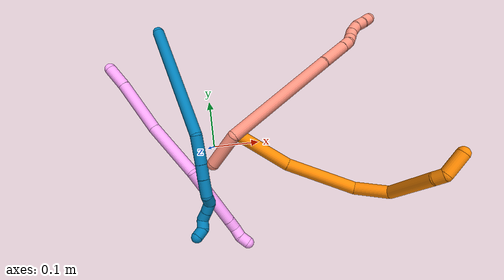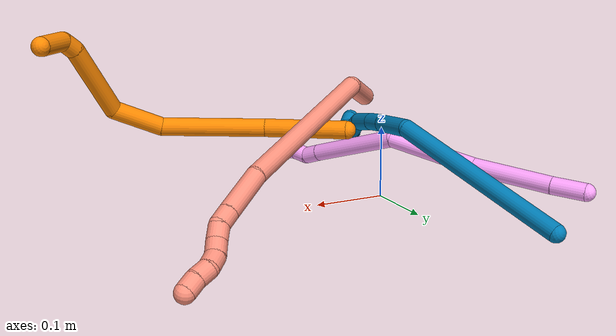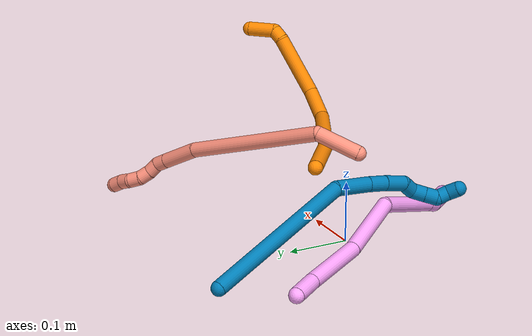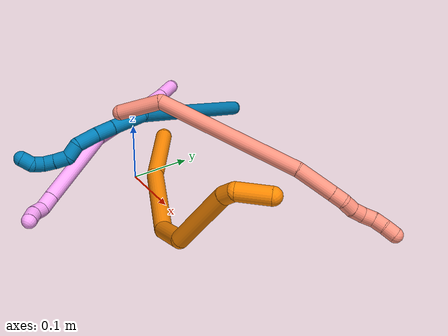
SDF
<sdf version="1.7">
 <world name="default">
  <model name="photoneo_s_sensor">
   <static>1</static>
   <pose>0 0 2 1.57079 1.57079 3.14159</pose>
   <link name="link">
    <inertial><mass>0.1</mass></inertial>
    <sensor name="sensor" type="depth">
     <update_rate>30</update_rate>
     <camera>
      <horizontal_fov>1.22</horizontal_fov>
      <image><width>1920</width><height>1200</height><format>B8G8R8</format></image>
      <clip><near>0.1</near><far>4</far></clip>
      <depth_camera><output>points</output></depth_camera>
     </camera>
     <plugin name="camera_plugin" filename="libgazebo_ros_depth_camera.so">
      <baseline>0.2</baseline>
      <alwaysOn>1</alwaysOn>
      <updateRate>0.0</updateRate>
      <cameraName>camera_ir</cameraName>
      <imageTopicName>/camera/color/image_raw</imageTopicName>
      <cameraInfoTopicName>/camera/color/camera_info</cameraInfoTopicName>
      <depthImageTopicName>/camera/depth/image_raw</depthImageTopicName>
      <depthImageCameraInfoTopicName>/camera/depth/camera_info</depthImageCameraInfoTopicName>
      <pointCloudTopicName>/camera/depth/points</pointCloudTopicName>
      <frameName>fr_optical</frameName>
      <pointCloudCutoff>0.1</pointCloudCutoff>
      <pointCloudCutoffMax>2.0</pointCloudCutoffMax>
      <distortionK1>0</distortionK1>
      <distortionK2>0</distortionK2>
      <distortionK3>0</distortionK3>
      <distortionT1>0</distortionT1>
      <distortionT2>0</distortionT2>
      <CxPrime>0</CxPrime>
      <Cx>0</Cx>
      <Cy>0</Cy>
      <focalLength>0</focalLength>
      <hackBaseline>0</hackBaseline>
     </plugin>
    </sensor>
   </link>
  </model>
  <model name="bin">
   <static>1</static>
   <link name="bottom">
    <collision name="collision-bottom">
     <pose>0 0 -0.01 0 -0 0</pose>
     <geometry><box><size>0.8 0.6 0.02</size></box></geometry>
     <surface>
      <friction><ode><mu>100</mu><mu2>100</mu2></ode></friction>
      <contact><collide_bitmask>65535</collide_bitmask></contact>
     </surface>
    </collision>
   </link>
   <link name="west_wall">
    <collision name="collision-west_wall">
     <pose>-0.41 0 0.1 0 -0 0</pose>
     <geometry><box><size>0.02 0.6 0.2</size></box></geometry>
     <surface>
      <friction><ode><mu>100</mu><mu2>100</mu2></ode></friction>
      <contact><collide_bitmask>65535</collide_bitmask></contact>
     </surface>
    </collision>
   </link>
   <link name="east_wall">
    <collision name="collision-east_wall">
     <pose>0.41 0 0.1 0 -0 0</pose>
     <geometry><box><size>0.02 0.6 0.2</size></box></geometry>
     <surface>
      <friction><ode><mu>100</mu><mu2>100</mu2></ode></friction>
      <contact><collide_bitmask>65535</collide_bitmask></contact>
     </surface>
    </collision>
   </link>
   <link name="south_wall">
    <collision name="collision-south_wall">
     <pose>0 -0.31 0.1 0 -0 0</pose>
     <geometry><box><size>0.8 0.02 0.2</size></box></geometry>
     <surface>
      <friction><ode><mu>100</mu><mu2>100</mu2></ode></friction>
      <contact><collide_bitmask>65535</collide_bitmask></contact>
     </surface>
    </collision>
   </link>
   <link name="north_wall">
    <collision name="collision-north_wall">
     <pose>0 0.31 0.1 0 -0 0</pose>
     <geometry><box><size>0.8 0.02 0.2</size></box></geometry>
     <surface>
      <friction><ode><mu>100</mu><mu2>100</mu2></ode></friction>
      <contact><collide_bitmask>65535</collide_bitmask></contact>
     </surface>
    </collision>
   </link>
  </model>
  <model name="4">
   <static>0</static>
   <link name="4">
    <collision name="collision-cylinder-e_1_1_4">
     <pose>0.007373 -0.007372 -0.021221 2.80725 0.317135 1.51703</pose>
     <geometry><cylinder><radius>0.0125</radius><length>0.047288</length></cylinder></geometry>
     <surface>
      <friction><ode><mu>1.16</mu><mu2>1.16</mu2><slip1>0</slip1><slip2>0</slip2></ode></friction>
      <contact><ode><kp>1e+06</kp><kd>1</kd><max_vel>0</max_vel><min_depth>0.001</min_depth></ode></contact>
     </surface>
    </collision>
    <visual name="visual-cylinder-e_1_1_4">
     <pose>0.007373 -0.007372 -0.021221 2.80725 0.317135 1.51703</pose>
     <geometry><cylinder><radius>0.0125</radius><length>0.047288</length></cylinder></geometry>
     <material><ambient>1 0.65098 0.996078 1</ambient></material>
    </visual>
    <collision name="collision-cylinder-e_2_4_5">
     <pose>0.03032 -0.036474 -0.094349 2.74512 0.269987 1.18907</pose>
     <geometry><cylinder><radius>0.0125</radius><length>0.116774</length></cylinder></geometry>
     <surface>
      <friction><ode><mu>1.16</mu><mu2>1.16</mu2><slip1>0</slip1><slip2>0</slip2></ode></friction>
      <contact><ode><kp>1e+06</kp><kd>1</kd><max_vel>0</max_vel><min_depth>0.001</min_depth></ode></contact>
     </surface>
    </collision>
    <visual name="visual-cylinder-e_2_4_5">
     <pose>0.03032 -0.036474 -0.094349 2.74512 0.269987 1.18907</pose>
     <geometry><cylinder><radius>0.0125</radius><length>0.116774</length></cylinder></geometry>
     <material><ambient>1 0.65098 0.996078 1</ambient></material>
    </visual>
    <collision name="collision-cylinder-e_3_5_6">
     <pose>0.073631 -0.082759 -0.199274 2.70788 0.443236 1.59322</pose>
     <geometry><cylinder><radius>0.0125</radius><length>0.129357</length></cylinder></geometry>
     <surface>
      <friction><ode><mu>1.16</mu><mu2>1.16</mu2><slip1>0</slip1><slip2>0</slip2></ode></friction>
      <contact><ode><kp>1e+06</kp><kd>1</kd><max_vel>0</max_vel><min_depth>0.001</min_depth></ode></contact>
     </surface>
    </collision>
    <visual name="visual-cylinder-e_3_5_6">
     <pose>0.073631 -0.082759 -0.199274 2.70788 0.443236 1.59322</pose>
     <geometry><cylinder><radius>0.0125</radius><length>0.129357</length></cylinder></geometry>
     <material><ambient>1 0.65098 0.996078 1</ambient></material>
    </visual>
    <collision name="collision-cylinder-e_4_6_7">
     <pose>0.101384 -0.115601 -0.320945 3.02145 0.000211 0.003514</pose>
     <geometry><cylinder><radius>0.0125</radius><length>0.138301</length></cylinder></geometry>
     <surface>
      <friction><ode><mu>1.16</mu><mu2>1.16</mu2><slip1>0</slip1><slip2>0</slip2></ode></friction>
      <contact><ode><kp>1e+06</kp><kd>1</kd><max_vel>0</max_vel><min_depth>0.001</min_depth></ode></contact>
     </surface>
    </collision>
    <visual name="visual-cylinder-e_4_6_7">
     <pose>0.101384 -0.115601 -0.320945 3.02145 0.000211 0.003514</pose>
     <geometry><cylinder><radius>0.0125</radius><length>0.138301</length></cylinder></geometry>
     <material><ambient>1 0.65098 0.996078 1</ambient></material>
    </visual>
    <collision name="collision-cylinder-e_5_7_8">
     <pose>0.10116 -0.125139 -0.40213 3.04214 -0.01894 -0.37609</pose>
     <geometry><cylinder><radius>0.0125</radius><length>0.025194</length></cylinder></geometry>
     <surface>
      <friction><ode><mu>1.16</mu><mu2>1.16</mu2><slip1>0</slip1><slip2>0</slip2></ode></friction>
      <contact><ode><kp>1e+06</kp><kd>1</kd><max_vel>0</max_vel><min_depth>0.001</min_depth></ode></contact>
     </surface>
    </collision>
    <visual name="visual-cylinder-e_5_7_8">
     <pose>0.10116 -0.125139 -0.40213 3.04214 -0.01894 -0.37609</pose>
     <geometry><cylinder><radius>0.0125</radius><length>0.025194</length></cylinder></geometry>
     <material><ambient>1 0.65098 0.996078 1</ambient></material>
    </visual>
    <collision name="collision-cylinder-e_6_8_9">
     <pose>0.104256 -0.131446 -0.423688 2.6309 0.311798 1.08393</pose>
     <geometry><cylinder><radius>0.0125</radius><length>0.021738</length></cylinder></geometry>
     <surface>
      <friction><ode><mu>1.16</mu><mu2>1.16</mu2><slip1>0</slip1><slip2>0</slip2></ode></friction>
      <contact><ode><kp>1e+06</kp><kd>1</kd><max_vel>0</max_vel><min_depth>0.001</min_depth></ode></contact>
     </surface>
    </collision>
    <visual name="visual-cylinder-e_6_8_9">
     <pose>0.104256 -0.131446 -0.423688 2.6309 0.311798 1.08393</pose>
     <geometry><cylinder><radius>0.0125</radius><length>0.021738</length></cylinder></geometry>
     <material><ambient>1 0.65098 0.996078 1</ambient></material>
    </visual>
    <collision name="collision-cylinder-e_7_9_2">
     <pose>0.112731 -0.138038 -0.44194 2.97676 0.502525 2.51891</pose>
     <geometry><cylinder><radius>0.0125</radius><length>0.021347</length></cylinder></geometry>
     <surface>
      <friction><ode><mu>1.16</mu><mu2>1.16</mu2><slip1>0</slip1><slip2>0</slip2></ode></friction>
      <contact><ode><kp>1e+06</kp><kd>1</kd><max_vel>0</max_vel><min_depth>0.001</min_depth></ode></contact>
     </surface>
    </collision>
    <visual name="visual-cylinder-e_7_9_2">
     <pose>0.112731 -0.138038 -0.44194 2.97676 0.502525 2.51891</pose>
     <geometry><cylinder><radius>0.0125</radius><length>0.021347</length></cylinder></geometry>
     <material><ambient>1 0.65098 0.996078 1</ambient></material>
    </visual>
    <collision name="collision-sphere-2">
     <pose>0.117871 -0.139572 -0.451167 0 -0 0</pose>
     <geometry><sphere><radius>0.0125</radius></sphere></geometry>
     <surface>
      <friction><ode><mu>1.16</mu><mu2>1.16</mu2><slip1>0</slip1><slip2>0</slip2></ode></friction>
      <contact><ode><kp>1e+06</kp><kd>1</kd><max_vel>0</max_vel><min_depth>0.001</min_depth></ode></contact>
     </surface>
    </collision>
    <visual name="visual-sphere-2">
     <pose>0.117871 -0.139572 -0.451167 0 -0 0</pose>
     <geometry><sphere><radius>0.0125</radius></sphere></geometry>
     <material><ambient>1 0.65098 0.996078 1</ambient></material>
    </visual>
    <collision name="collision-sphere-9">
     <pose>0.10759 -0.136503 -0.432713 0 -0 0</pose>
     <geometry><sphere><radius>0.0125</radius></sphere></geometry>
     <surface>
      <friction><ode><mu>1.16</mu><mu2>1.16</mu2><slip1>0</slip1><slip2>0</slip2></ode></friction>
      <contact><ode><kp>1e+06</kp><kd>1</kd><max_vel>0</max_vel><min_depth>0.001</min_depth></ode></contact>
     </surface>
    </collision>
    <visual name="visual-sphere-9">
     <pose>0.10759 -0.136503 -0.432713 0 -0 0</pose>
     <geometry><sphere><radius>0.0125</radius></sphere></geometry>
     <material><ambient>1 0.65098 0.996078 1</ambient></material>
    </visual>
    <collision name="collision-sphere-4">
     <pose>0.014747 -0.014744 -0.042442 0 -0 0</pose>
     <geometry><sphere><radius>0.0125</radius></sphere></geometry>
     <surface>
      <friction><ode><mu>1.16</mu><mu2>1.16</mu2><slip1>0</slip1><slip2>0</slip2></ode></friction>
      <contact><ode><kp>1e+06</kp><kd>1</kd><max_vel>0</max_vel><min_depth>0.001</min_depth></ode></contact>
     </surface>
    </collision>
    <visual name="visual-sphere-4">
     <pose>0.014747 -0.014744 -0.042442 0 -0 0</pose>
     <geometry><sphere><radius>0.0125</radius></sphere></geometry>
     <material><ambient>1 0.65098 0.996078 1</ambient></material>
    </visual>
    <collision name="collision-sphere-1">
     <geometry><sphere><radius>0.0125</radius></sphere></geometry>
     <surface>
      <friction><ode><mu>1.16</mu><mu2>1.16</mu2><slip1>0</slip1><slip2>0</slip2></ode></friction>
      <contact><ode><kp>1e+06</kp><kd>1</kd><max_vel>0</max_vel><min_depth>0.001</min_depth></ode></contact>
     </surface>
    </collision>
    <visual name="visual-sphere-1">
     <geometry><sphere><radius>0.0125</radius></sphere></geometry>
     <material><ambient>1 0.65098 0.996078 1</ambient></material>
    </visual>
    <collision name="collision-sphere-8">
     <pose>0.100921 -0.12639 -0.414663 0 -0 0</pose>
     <geometry><sphere><radius>0.0125</radius></sphere></geometry>
     <surface>
      <friction><ode><mu>1.16</mu><mu2>1.16</mu2><slip1>0</slip1><slip2>0</slip2></ode></friction>
      <contact><ode><kp>1e+06</kp><kd>1</kd><max_vel>0</max_vel><min_depth>0.001</min_depth></ode></contact>
     </surface>
    </collision>
    <visual name="visual-sphere-8">
     <pose>0.100921 -0.12639 -0.414663 0 -0 0</pose>
     <geometry><sphere><radius>0.0125</radius></sphere></geometry>
     <material><ambient>1 0.65098 0.996078 1</ambient></material>
    </visual>
    <collision name="collision-sphere-5">
     <pose>0.045892 -0.058204 -0.146256 0 -0 0</pose>
     <geometry><sphere><radius>0.0125</radius></sphere></geometry>
     <surface>
      <friction><ode><mu>1.16</mu><mu2>1.16</mu2><slip1>0</slip1><slip2>0</slip2></ode></friction>
      <contact><ode><kp>1e+06</kp><kd>1</kd><max_vel>0</max_vel><min_depth>0.001</min_depth></ode></contact>
     </surface>
    </collision>
    <visual name="visual-sphere-5">
     <pose>0.045892 -0.058204 -0.146256 0 -0 0</pose>
     <geometry><sphere><radius>0.0125</radius></sphere></geometry>
     <material><ambient>1 0.65098 0.996078 1</ambient></material>
    </visual>
    <collision name="collision-sphere-6">
     <pose>0.101369 -0.107313 -0.252293 0 -0 0</pose>
     <geometry><sphere><radius>0.0125</radius></sphere></geometry>
     <surface>
      <friction><ode><mu>1.16</mu><mu2>1.16</mu2><slip1>0</slip1><slip2>0</slip2></ode></friction>
      <contact><ode><kp>1e+06</kp><kd>1</kd><max_vel>0</max_vel><min_depth>0.001</min_depth></ode></contact>
     </surface>
    </collision>
    <visual name="visual-sphere-6">
     <pose>0.101369 -0.107313 -0.252293 0 -0 0</pose>
     <geometry><sphere><radius>0.0125</radius></sphere></geometry>
     <material><ambient>1 0.65098 0.996078 1</ambient></material>
    </visual>
    <collision name="collision-sphere-7">
     <pose>0.101398 -0.123889 -0.389598 0 -0 0</pose>
     <geometry><sphere><radius>0.0125</radius></sphere></geometry>
     <surface>
      <friction><ode><mu>1.16</mu><mu2>1.16</mu2><slip1>0</slip1><slip2>0</slip2></ode></friction>
      <contact><ode><kp>1e+06</kp><kd>1</kd><max_vel>0</max_vel><min_depth>0.001</min_depth></ode></contact>
     </surface>
    </collision>
    <visual name="visual-sphere-7">
     <pose>0.101398 -0.123889 -0.389598 0 -0 0</pose>
     <geometry><sphere><radius>0.0125</radius></sphere></geometry>
     <material><ambient>1 0.65098 0.996078 1</ambient></material>
    </visual>
    <inertial>
     <pose>0.069314 -0.080516 -0.221923 0 -0 0</pose>
     <mass>0.5</mass>
     <inertia><ixx>0.000585</ixx><ixy>0</ixy><ixz>0</ixz><iyy>7e-05</iyy><iyz>0</iyz><izz>-3e-06</izz></inertia>
    </inertial>
   </link>
   <pose>-0.203582 0.196083 0.029973 -1.07228 -0.641198 0.242874</pose>
  </model>
  <model name="9">
   <static>0</static>
   <link name="9">
    <collision name="collision-cylinder-e_1_1_4">
     <pose>0.048228 -0.079497 -0.094496 2.44218 0.372331 0.953442</pose>
     <geometry><cylinder><radius>0.0125</radius><length>0.265143</length></cylinder></geometry>
     <surface>
      <friction><ode><mu>1.16</mu><mu2>1.16</mu2><slip1>0</slip1><slip2>0</slip2></ode></friction>
      <contact><ode><kp>1e+06</kp><kd>1</kd><max_vel>0</max_vel><min_depth>0.001</min_depth></ode></contact>
     </surface>
    </collision>
    <visual name="visual-cylinder-e_1_1_4">
     <pose>0.048228 -0.079497 -0.094496 2.44218 0.372331 0.953442</pose>
     <geometry><cylinder><radius>0.0125</radius><length>0.265143</length></cylinder></geometry>
     <material><ambient>0 0.490196 0.709804 1</ambient></material>
    </visual>
    <collision name="collision-cylinder-e_2_4_5">
     <pose>0.095524 -0.171157 -0.216262 2.72208 -0.031212 -0.146361</pose>
     <geometry><cylinder><radius>0.0125</radius><length>0.059749</length></cylinder></geometry>
     <surface>
      <friction><ode><mu>1.16</mu><mu2>1.16</mu2><slip1>0</slip1><slip2>0</slip2></ode></friction>
      <contact><ode><kp>1e+06</kp><kd>1</kd><max_vel>0</max_vel><min_depth>0.001</min_depth></ode></contact>
     </surface>
    </collision>
    <visual name="visual-cylinder-e_2_4_5">
     <pose>0.095524 -0.171157 -0.216262 2.72208 -0.031212 -0.146361</pose>
     <geometry><cylinder><radius>0.0125</radius><length>0.059749</length></cylinder></geometry>
     <material><ambient>0 0.490196 0.709804 1</ambient></material>
    </visual>
    <collision name="collision-cylinder-e_3_5_6">
     <pose>0.093251 -0.189365 -0.257811 2.74113 -0.086212 -0.418824</pose>
     <geometry><cylinder><radius>0.0125</radius><length>0.031127</length></cylinder></geometry>
     <surface>
      <friction><ode><mu>1.16</mu><mu2>1.16</mu2><slip1>0</slip1><slip2>0</slip2></ode></friction>
      <contact><ode><kp>1e+06</kp><kd>1</kd><max_vel>0</max_vel><min_depth>0.001</min_depth></ode></contact>
     </surface>
    </collision>
    <visual name="visual-cylinder-e_3_5_6">
     <pose>0.093251 -0.189365 -0.257811 2.74113 -0.086212 -0.418824</pose>
     <geometry><cylinder><radius>0.0125</radius><length>0.031127</length></cylinder></geometry>
     <material><ambient>0 0.490196 0.709804 1</ambient></material>
    </visual>
    <collision name="collision-cylinder-e_4_6_7">
     <pose>0.090156 -0.201208 -0.28944 2.81903 -0.095647 -0.572205</pose>
     <geometry><cylinder><radius>0.0125</radius><length>0.036754</length></cylinder></geometry>
     <surface>
      <friction><ode><mu>1.16</mu><mu2>1.16</mu2><slip1>0</slip1><slip2>0</slip2></ode></friction>
      <contact><ode><kp>1e+06</kp><kd>1</kd><max_vel>0</max_vel><min_depth>0.001</min_depth></ode></contact>
     </surface>
    </collision>
    <visual name="visual-cylinder-e_4_6_7">
     <pose>0.090156 -0.201208 -0.28944 2.81903 -0.095647 -0.572205</pose>
     <geometry><cylinder><radius>0.0125</radius><length>0.036754</length></cylinder></geometry>
     <material><ambient>0 0.490196 0.709804 1</ambient></material>
    </visual>
    <collision name="collision-cylinder-e_5_7_8">
     <pose>0.085141 -0.204453 -0.318222 -2.92183 -0.271409 1.78239</pose>
     <geometry><cylinder><radius>0.0125</radius><length>0.024318</length></cylinder></geometry>
     <surface>
      <friction><ode><mu>1.16</mu><mu2>1.16</mu2><slip1>0</slip1><slip2>0</slip2></ode></friction>
      <contact><ode><kp>1e+06</kp><kd>1</kd><max_vel>0</max_vel><min_depth>0.001</min_depth></ode></contact>
     </surface>
    </collision>
    <visual name="visual-cylinder-e_5_7_8">
     <pose>0.085141 -0.204453 -0.318222 -2.92183 -0.271409 1.78239</pose>
     <geometry><cylinder><radius>0.0125</radius><length>0.024318</length></cylinder></geometry>
     <material><ambient>0 0.490196 0.709804 1</ambient></material>
    </visual>
    <collision name="collision-cylinder-e_6_8_9">
     <pose>0.075338 -0.20598 -0.337812 2.67783 -0.622296 -1.87491</pose>
     <geometry><cylinder><radius>0.0125</radius><length>0.022452</length></cylinder></geometry>
     <surface>
      <friction><ode><mu>1.16</mu><mu2>1.16</mu2><slip1>0</slip1><slip2>0</slip2></ode></friction>
      <contact><ode><kp>1e+06</kp><kd>1</kd><max_vel>0</max_vel><min_depth>0.001</min_depth></ode></contact>
     </surface>
    </collision>
    <visual name="visual-cylinder-e_6_8_9">
     <pose>0.075338 -0.20598 -0.337812 2.67783 -0.622296 -1.87491</pose>
     <geometry><cylinder><radius>0.0125</radius><length>0.022452</length></cylinder></geometry>
     <material><ambient>0 0.490196 0.709804 1</ambient></material>
    </visual>
    <collision name="collision-cylinder-e_7_9_10">
     <pose>0.062518 -0.214196 -0.352869 2.60158 -0.662612 -1.78653</pose>
     <geometry><cylinder><radius>0.0125</radius><length>0.020404</length></cylinder></geometry>
     <surface>
      <friction><ode><mu>1.16</mu><mu2>1.16</mu2><slip1>0</slip1><slip2>0</slip2></ode></friction>
      <contact><ode><kp>1e+06</kp><kd>1</kd><max_vel>0</max_vel><min_depth>0.001</min_depth></ode></contact>
     </surface>
    </collision>
    <visual name="visual-cylinder-e_7_9_10">
     <pose>0.062518 -0.214196 -0.352869 2.60158 -0.662612 -1.78653</pose>
     <geometry><cylinder><radius>0.0125</radius><length>0.020404</length></cylinder></geometry>
     <material><ambient>0 0.490196 0.709804 1</ambient></material>
    </visual>
    <collision name="collision-cylinder-e_8_10_11">
     <pose>0.05688 -0.225261 -0.366956 2.37452 0.063819 0.15788</pose>
     <geometry><cylinder><radius>0.0125</radius><length>0.020009</length></cylinder></geometry>
     <surface>
      <friction><ode><mu>1.16</mu><mu2>1.16</mu2><slip1>0</slip1><slip2>0</slip2></ode></friction>
      <contact><ode><kp>1e+06</kp><kd>1</kd><max_vel>0</max_vel><min_depth>0.001</min_depth></ode></contact>
     </surface>
    </collision>
    <visual name="visual-cylinder-e_8_10_11">
     <pose>0.05688 -0.225261 -0.366956 2.37452 0.063819 0.15788</pose>
     <geometry><cylinder><radius>0.0125</radius><length>0.020009</length></cylinder></geometry>
     <material><ambient>0 0.490196 0.709804 1</ambient></material>
    </visual>
    <collision name="collision-cylinder-e_9_11_2">
     <pose>0.05391 -0.241313 -0.376191 1.79156 -0.368331 -0.457286</pose>
     <geometry><cylinder><radius>0.0125</radius><length>0.020044</length></cylinder></geometry>
     <surface>
      <friction><ode><mu>1.16</mu><mu2>1.16</mu2><slip1>0</slip1><slip2>0</slip2></ode></friction>
      <contact><ode><kp>1e+06</kp><kd>1</kd><max_vel>0</max_vel><min_depth>0.001</min_depth></ode></contact>
     </surface>
    </collision>
    <visual name="visual-cylinder-e_9_11_2">
     <pose>0.05391 -0.241313 -0.376191 1.79156 -0.368331 -0.457286</pose>
     <geometry><cylinder><radius>0.0125</radius><length>0.020044</length></cylinder></geometry>
     <material><ambient>0 0.490196 0.709804 1</ambient></material>
    </visual>
    <collision name="collision-sphere-2">
     <pose>0.050301 -0.250435 -0.378238 0 -0 0</pose>
     <geometry><sphere><radius>0.0125</radius></sphere></geometry>
     <surface>
      <friction><ode><mu>1.16</mu><mu2>1.16</mu2><slip1>0</slip1><slip2>0</slip2></ode></friction>
      <contact><ode><kp>1e+06</kp><kd>1</kd><max_vel>0</max_vel><min_depth>0.001</min_depth></ode></contact>
     </surface>
    </collision>
    <visual name="visual-sphere-2">
     <pose>0.050301 -0.250435 -0.378238 0 -0 0</pose>
     <geometry><sphere><radius>0.0125</radius></sphere></geometry>
     <material><ambient>0 0.490196 0.709804 1</ambient></material>
    </visual>
    <collision name="collision-sphere-11">
     <pose>0.057518 -0.23219 -0.374144 0 -0 0</pose>
     <geometry><sphere><radius>0.0125</radius></sphere></geometry>
     <surface>
      <friction><ode><mu>1.16</mu><mu2>1.16</mu2><slip1>0</slip1><slip2>0</slip2></ode></friction>
      <contact><ode><kp>1e+06</kp><kd>1</kd><max_vel>0</max_vel><min_depth>0.001</min_depth></ode></contact>
     </surface>
    </collision>
    <visual name="visual-sphere-11">
     <pose>0.057518 -0.23219 -0.374144 0 -0 0</pose>
     <geometry><sphere><radius>0.0125</radius></sphere></geometry>
     <material><ambient>0 0.490196 0.709804 1</ambient></material>
    </visual>
    <collision name="collision-sphere-10">
     <pose>0.056242 -0.218331 -0.359768 0 -0 0</pose>
     <geometry><sphere><radius>0.0125</radius></sphere></geometry>
     <surface>
      <friction><ode><mu>1.16</mu><mu2>1.16</mu2><slip1>0</slip1><slip2>0</slip2></ode></friction>
      <contact><ode><kp>1e+06</kp><kd>1</kd><max_vel>0</max_vel><min_depth>0.001</min_depth></ode></contact>
     </surface>
    </collision>
    <visual name="visual-sphere-10">
     <pose>0.056242 -0.218331 -0.359768 0 -0 0</pose>
     <geometry><sphere><radius>0.0125</radius></sphere></geometry>
     <material><ambient>0 0.490196 0.709804 1</ambient></material>
    </visual>
    <collision name="collision-sphere-9">
     <pose>0.068794 -0.21006 -0.345971 0 -0 0</pose>
     <geometry><sphere><radius>0.0125</radius></sphere></geometry>
     <surface>
      <friction><ode><mu>1.16</mu><mu2>1.16</mu2><slip1>0</slip1><slip2>0</slip2></ode></friction>
      <contact><ode><kp>1e+06</kp><kd>1</kd><max_vel>0</max_vel><min_depth>0.001</min_depth></ode></contact>
     </surface>
    </collision>
    <visual name="visual-sphere-9">
     <pose>0.068794 -0.21006 -0.345971 0 -0 0</pose>
     <geometry><sphere><radius>0.0125</radius></sphere></geometry>
     <material><ambient>0 0.490196 0.709804 1</ambient></material>
    </visual>
    <collision name="collision-sphere-4">
     <pose>0.096456 -0.158995 -0.188992 0 -0 0</pose>
     <geometry><sphere><radius>0.0125</radius></sphere></geometry>
     <surface>
      <friction><ode><mu>1.16</mu><mu2>1.16</mu2><slip1>0</slip1><slip2>0</slip2></ode></friction>
      <contact><ode><kp>1e+06</kp><kd>1</kd><max_vel>0</max_vel><min_depth>0.001</min_depth></ode></contact>
     </surface>
    </collision>
    <visual name="visual-sphere-4">
     <pose>0.096456 -0.158995 -0.188992 0 -0 0</pose>
     <geometry><sphere><radius>0.0125</radius></sphere></geometry>
     <material><ambient>0 0.490196 0.709804 1</ambient></material>
    </visual>
    <collision name="collision-sphere-1">
     <geometry><sphere><radius>0.0125</radius></sphere></geometry>
     <surface>
      <friction><ode><mu>1.16</mu><mu2>1.16</mu2><slip1>0</slip1><slip2>0</slip2></ode></friction>
      <contact><ode><kp>1e+06</kp><kd>1</kd><max_vel>0</max_vel><min_depth>0.001</min_depth></ode></contact>
     </surface>
    </collision>
    <visual name="visual-sphere-1">
     <geometry><sphere><radius>0.0125</radius></sphere></geometry>
     <material><ambient>0 0.490196 0.709804 1</ambient></material>
    </visual>
    <collision name="collision-sphere-8">
     <pose>0.081882 -0.2019 -0.329654 0 -0 0</pose>
     <geometry><sphere><radius>0.0125</radius></sphere></geometry>
     <surface>
      <friction><ode><mu>1.16</mu><mu2>1.16</mu2><slip1>0</slip1><slip2>0</slip2></ode></friction>
      <contact><ode><kp>1e+06</kp><kd>1</kd><max_vel>0</max_vel><min_depth>0.001</min_depth></ode></contact>
     </surface>
    </collision>
    <visual name="visual-sphere-8">
     <pose>0.081882 -0.2019 -0.329654 0 -0 0</pose>
     <geometry><sphere><radius>0.0125</radius></sphere></geometry>
     <material><ambient>0 0.490196 0.709804 1</ambient></material>
    </visual>
    <collision name="collision-sphere-5">
     <pose>0.094591 -0.18332 -0.243533 0 -0 0</pose>
     <geometry><sphere><radius>0.0125</radius></sphere></geometry>
     <surface>
      <friction><ode><mu>1.16</mu><mu2>1.16</mu2><slip1>0</slip1><slip2>0</slip2></ode></friction>
      <contact><ode><kp>1e+06</kp><kd>1</kd><max_vel>0</max_vel><min_depth>0.001</min_depth></ode></contact>
     </surface>
    </collision>
    <visual name="visual-sphere-5">
     <pose>0.094591 -0.18332 -0.243533 0 -0 0</pose>
     <geometry><sphere><radius>0.0125</radius></sphere></geometry>
     <material><ambient>0 0.490196 0.709804 1</ambient></material>
    </visual>
    <collision name="collision-sphere-6">
     <pose>0.091911 -0.195409 -0.27209 0 -0 0</pose>
     <geometry><sphere><radius>0.0125</radius></sphere></geometry>
     <surface>
      <friction><ode><mu>1.16</mu><mu2>1.16</mu2><slip1>0</slip1><slip2>0</slip2></ode></friction>
      <contact><ode><kp>1e+06</kp><kd>1</kd><max_vel>0</max_vel><min_depth>0.001</min_depth></ode></contact>
     </surface>
    </collision>
    <visual name="visual-sphere-6">
     <pose>0.091911 -0.195409 -0.27209 0 -0 0</pose>
     <geometry><sphere><radius>0.0125</radius></sphere></geometry>
     <material><ambient>0 0.490196 0.709804 1</ambient></material>
    </visual>
    <collision name="collision-sphere-7">
     <pose>0.088401 -0.207007 -0.30679 0 -0 0</pose>
     <geometry><sphere><radius>0.0125</radius></sphere></geometry>
     <surface>
      <friction><ode><mu>1.16</mu><mu2>1.16</mu2><slip1>0</slip1><slip2>0</slip2></ode></friction>
      <contact><ode><kp>1e+06</kp><kd>1</kd><max_vel>0</max_vel><min_depth>0.001</min_depth></ode></contact>
     </surface>
    </collision>
    <visual name="visual-sphere-7">
     <pose>0.088401 -0.207007 -0.30679 0 -0 0</pose>
     <geometry><sphere><radius>0.0125</radius></sphere></geometry>
     <material><ambient>0 0.490196 0.709804 1</ambient></material>
    </visual>
    <inertial>
     <pose>0.063934 -0.135811 -0.18809 0 -0 0</pose>
     <mass>0.5</mass>
     <inertia>
      <ixx>0.002056</ixx>
      <ixy>0</ixy>
      <ixz>0</ixz>
      <iyy>0.000741</iyy>
      <iyz>0</iyz>
      <izz>0.000358</izz>
     </inertia>
    </inertial>
   </link>
   <pose>-0.094061 0.268371 0.011494 -1.08259 -0.490902 0.049957</pose>
  </model>
  <model name="16">
   <static>0</static>
   <link name="16">
    <collision name="collision-cylinder-e_1_1_4">
     <pose>0.027054 0.012084 0.021179 -0.51852 0.837268 -0.234933</pose>
     <geometry><cylinder><radius>0.0125</radius><length>0.072842</length></cylinder></geometry>
     <surface>
      <friction><ode><mu>1.16</mu><mu2>1.16</mu2><slip1>0</slip1><slip2>0</slip2></ode></friction>
      <contact><ode><kp>1e+06</kp><kd>1</kd><max_vel>0</max_vel><min_depth>0.001</min_depth></ode></contact>
     </surface>
    </collision>
    <visual name="visual-cylinder-e_1_1_4">
     <pose>0.027054 0.012084 0.021179 -0.51852 0.837268 -0.234933</pose>
     <geometry><cylinder><radius>0.0125</radius><length>0.072842</length></cylinder></geometry>
     <material><ambient>1 0.576471 0.494118 1</ambient></material>
    </visual>
    <collision name="collision-cylinder-e_2_4_5">
     <pose>0.165207 0.071673 0.033636 -1.75237 1.16071 -1.33355</pose>
     <geometry><cylinder><radius>0.0125</radius><length>0.242287</length></cylinder></geometry>
     <surface>
      <friction><ode><mu>1.16</mu><mu2>1.16</mu2><slip1>0</slip1><slip2>0</slip2></ode></friction>
      <contact><ode><kp>1e+06</kp><kd>1</kd><max_vel>0</max_vel><min_depth>0.001</min_depth></ode></contact>
     </surface>
    </collision>
    <visual name="visual-cylinder-e_2_4_5">
     <pose>0.165207 0.071673 0.033636 -1.75237 1.16071 -1.33355</pose>
     <geometry><cylinder><radius>0.0125</radius><length>0.242287</length></cylinder></geometry>
     <material><ambient>1 0.576471 0.494118 1</ambient></material>
    </visual>
    <collision name="collision-cylinder-e_3_5_6">
     <pose>0.30392 0.132899 0.016933 -2.09762 1.04907 -1.57668</pose>
     <geometry><cylinder><radius>0.0125</radius><length>0.063703</length></cylinder></geometry>
     <surface>
      <friction><ode><mu>1.16</mu><mu2>1.16</mu2><slip1>0</slip1><slip2>0</slip2></ode></friction>
      <contact><ode><kp>1e+06</kp><kd>1</kd><max_vel>0</max_vel><min_depth>0.001</min_depth></ode></contact>
     </surface>
    </collision>
    <visual name="visual-cylinder-e_3_5_6">
     <pose>0.30392 0.132899 0.016933 -2.09762 1.04907 -1.57668</pose>
     <geometry><cylinder><radius>0.0125</radius><length>0.063703</length></cylinder></geometry>
     <material><ambient>1 0.576471 0.494118 1</ambient></material>
    </visual>
    <collision name="collision-cylinder-e_4_6_7">
     <pose>0.340602 0.151225 0.006252 -2.10097 1.0388 -1.56868</pose>
     <geometry><cylinder><radius>0.0125</radius><length>0.021045</length></cylinder></geometry>
     <surface>
      <friction><ode><mu>1.16</mu><mu2>1.16</mu2><slip1>0</slip1><slip2>0</slip2></ode></friction>
      <contact><ode><kp>1e+06</kp><kd>1</kd><max_vel>0</max_vel><min_depth>0.001</min_depth></ode></contact>
     </surface>
    </collision>
    <visual name="visual-cylinder-e_4_6_7">
     <pose>0.340602 0.151225 0.006252 -2.10097 1.0388 -1.56868</pose>
     <geometry><cylinder><radius>0.0125</radius><length>0.021045</length></cylinder></geometry>
     <material><ambient>1 0.576471 0.494118 1</ambient></material>
    </visual>
    <collision name="collision-cylinder-e_5_7_8">
     <pose>0.355293 0.162596 -0.001218 -2.18494 0.596598 -1.07055</pose>
     <geometry><cylinder><radius>0.0125</radius><length>0.020016</length></cylinder></geometry>
     <surface>
      <friction><ode><mu>1.16</mu><mu2>1.16</mu2><slip1>0</slip1><slip2>0</slip2></ode></friction>
      <contact><ode><kp>1e+06</kp><kd>1</kd><max_vel>0</max_vel><min_depth>0.001</min_depth></ode></contact>
     </surface>
    </collision>
    <visual name="visual-cylinder-e_5_7_8">
     <pose>0.355293 0.162596 -0.001218 -2.18494 0.596598 -1.07055</pose>
     <geometry><cylinder><radius>0.0125</radius><length>0.020016</length></cylinder></geometry>
     <material><ambient>1 0.576471 0.494118 1</ambient></material>
    </visual>
    <collision name="collision-cylinder-e_6_8_9">
     <pose>0.366676 0.17713 -0.008538 -1.88787 0.613815 -0.824893</pose>
     <geometry><cylinder><radius>0.0125</radius><length>0.020002</length></cylinder></geometry>
     <surface>
      <friction><ode><mu>1.16</mu><mu2>1.16</mu2><slip1>0</slip1><slip2>0</slip2></ode></friction>
      <contact><ode><kp>1e+06</kp><kd>1</kd><max_vel>0</max_vel><min_depth>0.001</min_depth></ode></contact>
     </surface>
    </collision>
    <visual name="visual-cylinder-e_6_8_9">
     <pose>0.366676 0.17713 -0.008538 -1.88787 0.613815 -0.824893</pose>
     <geometry><cylinder><radius>0.0125</radius><length>0.020002</length></cylinder></geometry>
     <material><ambient>1 0.576471 0.494118 1</ambient></material>
    </visual>
    <collision name="collision-cylinder-e_7_9_10">
     <pose>0.380551 0.190789 -0.011788 -1.68922 0.939477 -1.03857</pose>
     <geometry><cylinder><radius>0.0125</radius><length>0.020103</length></cylinder></geometry>
     <surface>
      <friction><ode><mu>1.16</mu><mu2>1.16</mu2><slip1>0</slip1><slip2>0</slip2></ode></friction>
      <contact><ode><kp>1e+06</kp><kd>1</kd><max_vel>0</max_vel><min_depth>0.001</min_depth></ode></contact>
     </surface>
    </collision>
    <visual name="visual-cylinder-e_7_9_10">
     <pose>0.380551 0.190789 -0.011788 -1.68922 0.939477 -1.03857</pose>
     <geometry><cylinder><radius>0.0125</radius><length>0.020103</length></cylinder></geometry>
     <material><ambient>1 0.576471 0.494118 1</ambient></material>
    </visual>
    <collision name="collision-cylinder-e_8_10_11">
     <pose>0.398201 0.199176 -0.014176 -2.16519 1.26475 -1.88728</pose>
     <geometry><cylinder><radius>0.0125</radius><length>0.020001</length></cylinder></geometry>
     <surface>
      <friction><ode><mu>1.16</mu><mu2>1.16</mu2><slip1>0</slip1><slip2>0</slip2></ode></friction>
      <contact><ode><kp>1e+06</kp><kd>1</kd><max_vel>0</max_vel><min_depth>0.001</min_depth></ode></contact>
     </surface>
    </collision>
    <visual name="visual-cylinder-e_8_10_11">
     <pose>0.398201 0.199176 -0.014176 -2.16519 1.26475 -1.88728</pose>
     <geometry><cylinder><radius>0.0125</radius><length>0.020001</length></cylinder></geometry>
     <material><ambient>1 0.576471 0.494118 1</ambient></material>
    </visual>
    <collision name="collision-cylinder-e_9_11_2">
     <pose>0.416526 0.205525 -0.018678 -2.20169 1.07347 -1.72841</pose>
     <geometry><cylinder><radius>0.0125</radius><length>0.020002</length></cylinder></geometry>
     <surface>
      <friction><ode><mu>1.16</mu><mu2>1.16</mu2><slip1>0</slip1><slip2>0</slip2></ode></friction>
      <contact><ode><kp>1e+06</kp><kd>1</kd><max_vel>0</max_vel><min_depth>0.001</min_depth></ode></contact>
     </surface>
    </collision>
    <visual name="visual-cylinder-e_9_11_2">
     <pose>0.416526 0.205525 -0.018678 -2.20169 1.07347 -1.72841</pose>
     <geometry><cylinder><radius>0.0125</radius><length>0.020002</length></cylinder></geometry>
     <material><ambient>1 0.576471 0.494118 1</ambient></material>
    </visual>
    <collision name="collision-sphere-2">
     <pose>0.425316 0.209378 -0.021492 0 -0 0</pose>
     <geometry><sphere><radius>0.0125</radius></sphere></geometry>
     <surface>
      <friction><ode><mu>1.16</mu><mu2>1.16</mu2><slip1>0</slip1><slip2>0</slip2></ode></friction>
      <contact><ode><kp>1e+06</kp><kd>1</kd><max_vel>0</max_vel><min_depth>0.001</min_depth></ode></contact>
     </surface>
    </collision>
    <visual name="visual-sphere-2">
     <pose>0.425316 0.209378 -0.021492 0 -0 0</pose>
     <geometry><sphere><radius>0.0125</radius></sphere></geometry>
     <material><ambient>1 0.576471 0.494118 1</ambient></material>
    </visual>
    <collision name="collision-sphere-11">
     <pose>0.407737 0.201672 -0.015863 0 -0 0</pose>
     <geometry><sphere><radius>0.0125</radius></sphere></geometry>
     <surface>
      <friction><ode><mu>1.16</mu><mu2>1.16</mu2><slip1>0</slip1><slip2>0</slip2></ode></friction>
      <contact><ode><kp>1e+06</kp><kd>1</kd><max_vel>0</max_vel><min_depth>0.001</min_depth></ode></contact>
     </surface>
    </collision>
    <visual name="visual-sphere-11">
     <pose>0.407737 0.201672 -0.015863 0 -0 0</pose>
     <geometry><sphere><radius>0.0125</radius></sphere></geometry>
     <material><ambient>1 0.576471 0.494118 1</ambient></material>
    </visual>
    <collision name="collision-sphere-10">
     <pose>0.388665 0.19668 -0.012488 0 -0 0</pose>
     <geometry><sphere><radius>0.0125</radius></sphere></geometry>
     <surface>
      <friction><ode><mu>1.16</mu><mu2>1.16</mu2><slip1>0</slip1><slip2>0</slip2></ode></friction>
      <contact><ode><kp>1e+06</kp><kd>1</kd><max_vel>0</max_vel><min_depth>0.001</min_depth></ode></contact>
     </surface>
    </collision>
    <visual name="visual-sphere-10">
     <pose>0.388665 0.19668 -0.012488 0 -0 0</pose>
     <geometry><sphere><radius>0.0125</radius></sphere></geometry>
     <material><ambient>1 0.576471 0.494118 1</ambient></material>
    </visual>
    <collision name="collision-sphere-9">
     <pose>0.372437 0.184898 -0.011087 0 -0 0</pose>
     <geometry><sphere><radius>0.0125</radius></sphere></geometry>
     <surface>
      <friction><ode><mu>1.16</mu><mu2>1.16</mu2><slip1>0</slip1><slip2>0</slip2></ode></friction>
      <contact><ode><kp>1e+06</kp><kd>1</kd><max_vel>0</max_vel><min_depth>0.001</min_depth></ode></contact>
     </surface>
    </collision>
    <visual name="visual-sphere-9">
     <pose>0.372437 0.184898 -0.011087 0 -0 0</pose>
     <geometry><sphere><radius>0.0125</radius></sphere></geometry>
     <material><ambient>1 0.576471 0.494118 1</ambient></material>
    </visual>
    <collision name="collision-sphere-4">
     <pose>0.054108 0.024169 0.042357 0 -0 0</pose>
     <geometry><sphere><radius>0.0125</radius></sphere></geometry>
     <surface>
      <friction><ode><mu>1.16</mu><mu2>1.16</mu2><slip1>0</slip1><slip2>0</slip2></ode></friction>
      <contact><ode><kp>1e+06</kp><kd>1</kd><max_vel>0</max_vel><min_depth>0.001</min_depth></ode></contact>
     </surface>
    </collision>
    <visual name="visual-sphere-4">
     <pose>0.054108 0.024169 0.042357 0 -0 0</pose>
     <geometry><sphere><radius>0.0125</radius></sphere></geometry>
     <material><ambient>1 0.576471 0.494118 1</ambient></material>
    </visual>
    <collision name="collision-sphere-1">
     <geometry><sphere><radius>0.0125</radius></sphere></geometry>
     <surface>
      <friction><ode><mu>1.16</mu><mu2>1.16</mu2><slip1>0</slip1><slip2>0</slip2></ode></friction>
      <contact><ode><kp>1e+06</kp><kd>1</kd><max_vel>0</max_vel><min_depth>0.001</min_depth></ode></contact>
     </surface>
    </collision>
    <visual name="visual-sphere-1">
     <geometry><sphere><radius>0.0125</radius></sphere></geometry>
     <material><ambient>1 0.576471 0.494118 1</ambient></material>
    </visual>
    <collision name="collision-sphere-8">
     <pose>0.360916 0.169362 -0.005989 0 -0 0</pose>
     <geometry><sphere><radius>0.0125</radius></sphere></geometry>
     <surface>
      <friction><ode><mu>1.16</mu><mu2>1.16</mu2><slip1>0</slip1><slip2>0</slip2></ode></friction>
      <contact><ode><kp>1e+06</kp><kd>1</kd><max_vel>0</max_vel><min_depth>0.001</min_depth></ode></contact>
     </surface>
    </collision>
    <visual name="visual-sphere-8">
     <pose>0.360916 0.169362 -0.005989 0 -0 0</pose>
     <geometry><sphere><radius>0.0125</radius></sphere></geometry>
     <material><ambient>1 0.576471 0.494118 1</ambient></material>
    </visual>
    <collision name="collision-sphere-5">
     <pose>0.276306 0.119177 0.024914 0 -0 0</pose>
     <geometry><sphere><radius>0.0125</radius></sphere></geometry>
     <surface>
      <friction><ode><mu>1.16</mu><mu2>1.16</mu2><slip1>0</slip1><slip2>0</slip2></ode></friction>
      <contact><ode><kp>1e+06</kp><kd>1</kd><max_vel>0</max_vel><min_depth>0.001</min_depth></ode></contact>
     </surface>
    </collision>
    <visual name="visual-sphere-5">
     <pose>0.276306 0.119177 0.024914 0 -0 0</pose>
     <geometry><sphere><radius>0.0125</radius></sphere></geometry>
     <material><ambient>1 0.576471 0.494118 1</ambient></material>
    </visual>
    <collision name="collision-sphere-6">
     <pose>0.331534 0.14662 0.008951 0 -0 0</pose>
     <geometry><sphere><radius>0.0125</radius></sphere></geometry>
     <surface>
      <friction><ode><mu>1.16</mu><mu2>1.16</mu2><slip1>0</slip1><slip2>0</slip2></ode></friction>
      <contact><ode><kp>1e+06</kp><kd>1</kd><max_vel>0</max_vel><min_depth>0.001</min_depth></ode></contact>
     </surface>
    </collision>
    <visual name="visual-sphere-6">
     <pose>0.331534 0.14662 0.008951 0 -0 0</pose>
     <geometry><sphere><radius>0.0125</radius></sphere></geometry>
     <material><ambient>1 0.576471 0.494118 1</ambient></material>
    </visual>
    <collision name="collision-sphere-7">
     <pose>0.34967 0.15583 0.003553 0 -0 0</pose>
     <geometry><sphere><radius>0.0125</radius></sphere></geometry>
     <surface>
      <friction><ode><mu>1.16</mu><mu2>1.16</mu2><slip1>0</slip1><slip2>0</slip2></ode></friction>
      <contact><ode><kp>1e+06</kp><kd>1</kd><max_vel>0</max_vel><min_depth>0.001</min_depth></ode></contact>
     </surface>
    </collision>
    <visual name="visual-sphere-7">
     <pose>0.34967 0.15583 0.003553 0 -0 0</pose>
     <geometry><sphere><radius>0.0125</radius></sphere></geometry>
     <material><ambient>1 0.576471 0.494118 1</ambient></material>
    </visual>
    <inertial>
     <pose>0.213837 0.097243 0.019626 0 -0 0</pose>
     <mass>0.5</mass>
     <inertia>
      <ixx>-0.000315</ixx>
      <ixy>0</ixy>
      <ixz>0</ixz>
      <iyy>0.000584</iyy>
      <iyz>0</iyz>
      <izz>-0.001646</izz>
     </inertia>
    </inertial>
   </link>
   <pose>0.01169 -0.028494 0.140586 -0.351195 0.087659 0.21809</pose>
  </model>
  <model name="19">
   <static>0</static>
   <link name="19">
    <collision name="collision-cylinder-e_1_1_4">
     <pose>0.036649 -0.001826 -0.042964 3.09911 0.7058 3.02637</pose>
     <geometry><cylinder><radius>0.0125</radius><length>0.113004</length></cylinder></geometry>
     <surface>
      <friction><ode><mu>1.16</mu><mu2>1.16</mu2><slip1>0</slip1><slip2>0</slip2></ode></friction>
      <contact><ode><kp>1e+06</kp><kd>1</kd><max_vel>0</max_vel><min_depth>0.001</min_depth></ode></contact>
     </surface>
    </collision>
    <visual name="visual-cylinder-e_1_1_4">
     <pose>0.036649 -0.001826 -0.042964 3.09911 0.7058 3.02637</pose>
     <geometry><cylinder><radius>0.0125</radius><length>0.113004</length></cylinder></geometry>
     <material><ambient>0.996078 0.537255 0 1</ambient></material>
    </visual>
    <collision name="collision-cylinder-e_2_4_5">
     <pose>0.129101 -0.003209 -0.129642 -3.13144 0.906249 -3.12075</pose>
     <geometry><cylinder><radius>0.0125</radius><length>0.141773</length></cylinder></geometry>
     <surface>
      <friction><ode><mu>1.16</mu><mu2>1.16</mu2><slip1>0</slip1><slip2>0</slip2></ode></friction>
      <contact><ode><kp>1e+06</kp><kd>1</kd><max_vel>0</max_vel><min_depth>0.001</min_depth></ode></contact>
     </surface>
    </collision>
    <visual name="visual-cylinder-e_2_4_5">
     <pose>0.129101 -0.003209 -0.129642 -3.13144 0.906249 -3.12075</pose>
     <geometry><cylinder><radius>0.0125</radius><length>0.141773</length></cylinder></geometry>
     <material><ambient>0.996078 0.537255 0 1</ambient></material>
    </visual>
    <collision name="collision-cylinder-e_3_5_6">
     <pose>0.216861 -0.012256 -0.182772 2.35228 1.17458 2.02335</pose>
     <geometry><cylinder><radius>0.0125</radius><length>0.069284</length></cylinder></geometry>
     <surface>
      <friction><ode><mu>1.16</mu><mu2>1.16</mu2><slip1>0</slip1><slip2>0</slip2></ode></friction>
      <contact><ode><kp>1e+06</kp><kd>1</kd><max_vel>0</max_vel><min_depth>0.001</min_depth></ode></contact>
     </surface>
    </collision>
    <visual name="visual-cylinder-e_3_5_6">
     <pose>0.216861 -0.012256 -0.182772 2.35228 1.17458 2.02335</pose>
     <geometry><cylinder><radius>0.0125</radius><length>0.069284</length></cylinder></geometry>
     <material><ambient>0.996078 0.537255 0 1</ambient></material>
    </visual>
    <collision name="collision-cylinder-e_4_6_7">
     <pose>0.286944 -0.054715 -0.17309 1.04573 0.785696 0.4689</pose>
     <geometry><cylinder><radius>0.0125</radius><length>0.107801</length></cylinder></geometry>
     <surface>
      <friction><ode><mu>1.16</mu><mu2>1.16</mu2><slip1>0</slip1><slip2>0</slip2></ode></friction>
      <contact><ode><kp>1e+06</kp><kd>1</kd><max_vel>0</max_vel><min_depth>0.001</min_depth></ode></contact>
     </surface>
    </collision>
    <visual name="visual-cylinder-e_4_6_7">
     <pose>0.286944 -0.054715 -0.17309 1.04573 0.785696 0.4689</pose>
     <geometry><cylinder><radius>0.0125</radius><length>0.107801</length></cylinder></geometry>
     <material><ambient>0.996078 0.537255 0 1</ambient></material>
    </visual>
    <collision name="collision-cylinder-e_5_7_8">
     <pose>0.334526 -0.091671 -0.151359 0.987432 1.10316 0.639523</pose>
     <geometry><cylinder><radius>0.0125</radius><length>0.021192</length></cylinder></geometry>
     <surface>
      <friction><ode><mu>1.16</mu><mu2>1.16</mu2><slip1>0</slip1><slip2>0</slip2></ode></friction>
      <contact><ode><kp>1e+06</kp><kd>1</kd><max_vel>0</max_vel><min_depth>0.001</min_depth></ode></contact>
     </surface>
    </collision>
    <visual name="visual-cylinder-e_5_7_8">
     <pose>0.334526 -0.091671 -0.151359 0.987432 1.10316 0.639523</pose>
     <geometry><cylinder><radius>0.0125</radius><length>0.021192</length></cylinder></geometry>
     <material><ambient>0.996078 0.537255 0 1</ambient></material>
    </visual>
    <collision name="collision-cylinder-e_6_8_2">
     <pose>0.362979 -0.088264 -0.137085 -0.565767 0.942764 -0.294182</pose>
     <geometry><cylinder><radius>0.0125</radius><length>0.046947</length></cylinder></geometry>
     <surface>
      <friction><ode><mu>1.16</mu><mu2>1.16</mu2><slip1>0</slip1><slip2>0</slip2></ode></friction>
      <contact><ode><kp>1e+06</kp><kd>1</kd><max_vel>0</max_vel><min_depth>0.001</min_depth></ode></contact>
     </surface>
    </collision>
    <visual name="visual-cylinder-e_6_8_2">
     <pose>0.362979 -0.088264 -0.137085 -0.565767 0.942764 -0.294182</pose>
     <geometry><cylinder><radius>0.0125</radius><length>0.046947</length></cylinder></geometry>
     <material><ambient>0.996078 0.537255 0 1</ambient></material>
    </visual>
    <collision name="collision-sphere-2">
     <pose>0.381973 -0.080871 -0.125443 0 -0 0</pose>
     <geometry><sphere><radius>0.0125</radius></sphere></geometry>
     <surface>
      <friction><ode><mu>1.16</mu><mu2>1.16</mu2><slip1>0</slip1><slip2>0</slip2></ode></friction>
      <contact><ode><kp>1e+06</kp><kd>1</kd><max_vel>0</max_vel><min_depth>0.001</min_depth></ode></contact>
     </surface>
    </collision>
    <visual name="visual-sphere-2">
     <pose>0.381973 -0.080871 -0.125443 0 -0 0</pose>
     <geometry><sphere><radius>0.0125</radius></sphere></geometry>
     <material><ambient>0.996078 0.537255 0 1</ambient></material>
    </visual>
    <collision name="collision-sphere-4">
     <pose>0.073299 -0.003653 -0.085929 0 -0 0</pose>
     <geometry><sphere><radius>0.0125</radius></sphere></geometry>
     <surface>
      <friction><ode><mu>1.16</mu><mu2>1.16</mu2><slip1>0</slip1><slip2>0</slip2></ode></friction>
      <contact><ode><kp>1e+06</kp><kd>1</kd><max_vel>0</max_vel><min_depth>0.001</min_depth></ode></contact>
     </surface>
    </collision>
    <visual name="visual-sphere-4">
     <pose>0.073299 -0.003653 -0.085929 0 -0 0</pose>
     <geometry><sphere><radius>0.0125</radius></sphere></geometry>
     <material><ambient>0.996078 0.537255 0 1</ambient></material>
    </visual>
    <collision name="collision-sphere-1">
     <geometry><sphere><radius>0.0125</radius></sphere></geometry>
     <surface>
      <friction><ode><mu>1.16</mu><mu2>1.16</mu2><slip1>0</slip1><slip2>0</slip2></ode></friction>
      <contact><ode><kp>1e+06</kp><kd>1</kd><max_vel>0</max_vel><min_depth>0.001</min_depth></ode></contact>
     </surface>
    </collision>
    <visual name="visual-sphere-1">
     <geometry><sphere><radius>0.0125</radius></sphere></geometry>
     <material><ambient>0.996078 0.537255 0 1</ambient></material>
    </visual>
    <collision name="collision-sphere-8">
     <pose>0.343985 -0.095658 -0.148728 0 -0 0</pose>
     <geometry><sphere><radius>0.0125</radius></sphere></geometry>
     <surface>
      <friction><ode><mu>1.16</mu><mu2>1.16</mu2><slip1>0</slip1><slip2>0</slip2></ode></friction>
      <contact><ode><kp>1e+06</kp><kd>1</kd><max_vel>0</max_vel><min_depth>0.001</min_depth></ode></contact>
     </surface>
    </collision>
    <visual name="visual-sphere-8">
     <pose>0.343985 -0.095658 -0.148728 0 -0 0</pose>
     <geometry><sphere><radius>0.0125</radius></sphere></geometry>
     <material><ambient>0.996078 0.537255 0 1</ambient></material>
    </visual>
    <collision name="collision-sphere-5">
     <pose>0.184902 -0.002765 -0.173356 0 -0 0</pose>
     <geometry><sphere><radius>0.0125</radius></sphere></geometry>
     <surface>
      <friction><ode><mu>1.16</mu><mu2>1.16</mu2><slip1>0</slip1><slip2>0</slip2></ode></friction>
      <contact><ode><kp>1e+06</kp><kd>1</kd><max_vel>0</max_vel><min_depth>0.001</min_depth></ode></contact>
     </surface>
    </collision>
    <visual name="visual-sphere-5">
     <pose>0.184902 -0.002765 -0.173356 0 -0 0</pose>
     <geometry><sphere><radius>0.0125</radius></sphere></geometry>
     <material><ambient>0.996078 0.537255 0 1</ambient></material>
    </visual>
    <collision name="collision-sphere-6">
     <pose>0.248819 -0.021746 -0.192189 0 -0 0</pose>
     <geometry><sphere><radius>0.0125</radius></sphere></geometry>
     <surface>
      <friction><ode><mu>1.16</mu><mu2>1.16</mu2><slip1>0</slip1><slip2>0</slip2></ode></friction>
      <contact><ode><kp>1e+06</kp><kd>1</kd><max_vel>0</max_vel><min_depth>0.001</min_depth></ode></contact>
     </surface>
    </collision>
    <visual name="visual-sphere-6">
     <pose>0.248819 -0.021746 -0.192189 0 -0 0</pose>
     <geometry><sphere><radius>0.0125</radius></sphere></geometry>
     <material><ambient>0.996078 0.537255 0 1</ambient></material>
    </visual>
    <collision name="collision-sphere-7">
     <pose>0.325068 -0.087685 -0.15399 0 -0 0</pose>
     <geometry><sphere><radius>0.0125</radius></sphere></geometry>
     <surface>
      <friction><ode><mu>1.16</mu><mu2>1.16</mu2><slip1>0</slip1><slip2>0</slip2></ode></friction>
      <contact><ode><kp>1e+06</kp><kd>1</kd><max_vel>0</max_vel><min_depth>0.001</min_depth></ode></contact>
     </surface>
    </collision>
    <visual name="visual-sphere-7">
     <pose>0.325068 -0.087685 -0.15399 0 -0 0</pose>
     <geometry><sphere><radius>0.0125</radius></sphere></geometry>
     <material><ambient>0.996078 0.537255 0 1</ambient></material>
    </visual>
    <inertial>
     <pose>0.185064 -0.02699 -0.128401 0 -0 0</pose>
     <mass>0.5</mass>
     <inertia>
      <ixx>-9.3e-05</ixx>
      <ixy>0</ixy>
      <ixz>0</ixz>
      <iyy>0.00053</iyy>
      <iyz>0</iyz>
      <izz>-0.000322</izz>
     </inertia>
    </inertial>
   </link>
   <pose>0.065808 0.019796 0.106956 -1.31825 -0.218759 0.185186</pose>
  </model>
 </world>
</sdf>
